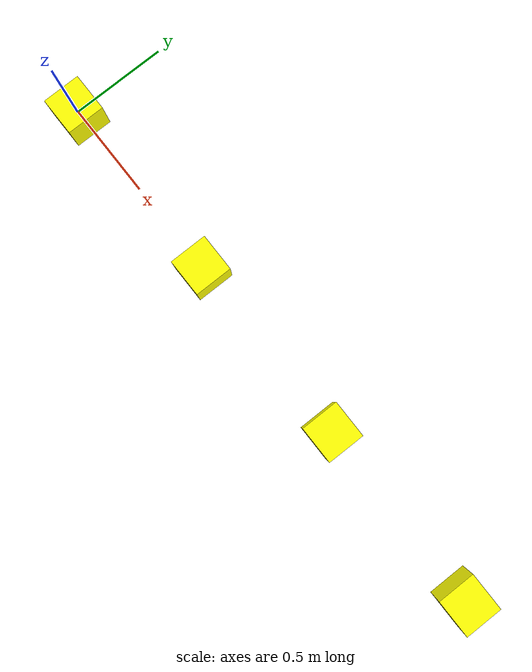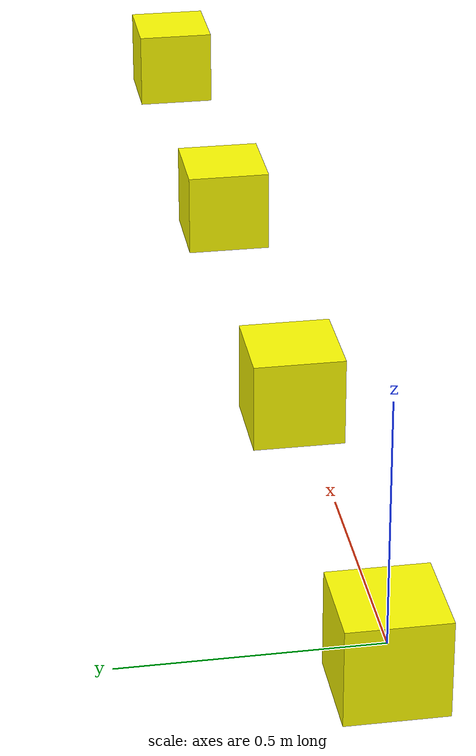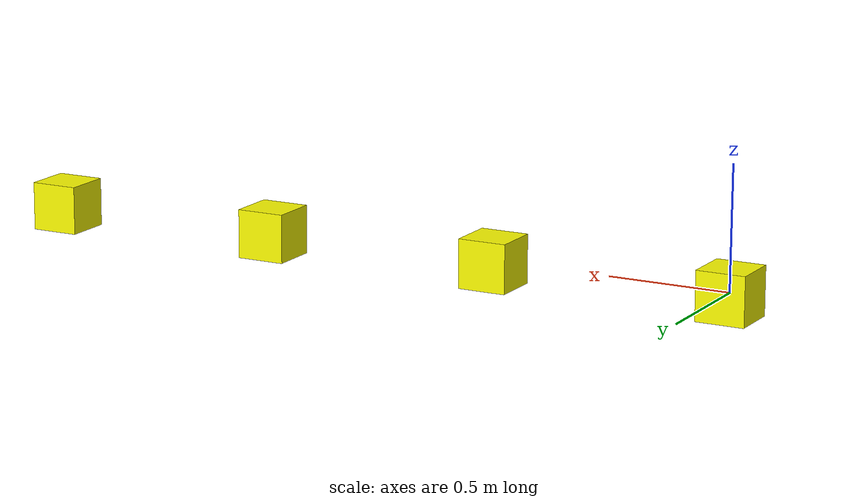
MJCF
<mujoco model="2D_UpperLimb">

  <compiler inertiafromgeom = "auto"
            angle 					= "radian" />

						<option  timestep  = '0.0001'
										iterations = '50'
										    solver = 'PGS'
										integrator = 'Euler'
										   gravity = "0 0 0"
									   collision = 'predefined' > <!-- Turn off collision -->

							<flag energy = 'enable'/>

						</option>

  <asset>
    <!-- Texture of the surrounding sky box
         setting everything as white-ish color for better visualization -->
     <texture type 		= "skybox"
              builtin = "flat"
              rgb1 		= "1 1 1"
              rgb2		= "1 1 1"
              width 	= "100"
              height 	= "100"/>

     <!-- Joint and Limb Color -->
     <material name = "JointColor" rgba = "1.0 1.0 0.0 1" />
     <material name = "LimbColor"  rgba = "0.7 0.7 0.7 1" />
  </asset>

  <worldbody>

        <body name='cameramover' mocap='true' pos='0 0 0'>
						<camera name='mycamera' pos='0.0 2.0 2.0' euler='1.5707 0 0'/>
      	</body>

    <!-- ===============  MODEL STARTS  =============== -->

    <!-- ============ UPPER ARM START =============== -->
		<body name='root' pos='0 0 0' euler='0 0 0'>
			<joint name='impedanceController' ref='0' type='slide' stiffness='0' pos='0 0 0' axis='1 0 0' />
			<inertial pos='0 0 0'  mass='1' diaginertia='1 1 1' />
			<geom name='manipulatorMassGEOM1' type='box' pos='0 0 0' material='JointColor' size='0.1 0.1 0.1' mass='0'/>

			<body name='manipulatedMass1' pos='0 0 0' euler='0 0 0'>
				<joint name='spring1' ref='0' type='slide' stiffness='1' pos='0 0 0' axis='1 0 0' />
				<inertial pos='1.0 0 0' mass='1' diaginertia='1 1 1' />
				<geom name='manipulatedMassGEOM2' type='box' pos='1.0 0 0' material='JointColor' size='0.1 0.1 0.1' mass='0'/>

				<body name='manipulatedMass2' pos='1 0 0' euler='0 0 0'>
					<joint name='spring2' ref='0' type='slide' stiffness='1' pos='0 0 0' axis='1 0 0' />
					<inertial pos='1.0 0 0' mass='1' diaginertia='1 1 1' />
					<geom name='manipulatedMassGEOM3' type='box' pos='1.0 0 0' material='JointColor' size='0.1 0.1 0.1' mass='0'/>

					<body name='manipulatedMass3' pos='1 0 0' euler='0 0 0'>
						<joint name='spring3' ref='0' type='slide' stiffness='1' pos='0 0 0' axis='1 0 0' />
						<inertial pos='1.0 0 0' mass='1' diaginertia='1 1 1' />
						<geom name='manipulatedMassGEOM4' type='box' pos='1.0 0 0' material='JointColor' size='0.1 0.1 0.1' mass='0'/>

					</body>
				</body>
			</body>

		</body>

  </worldbody>

	<!-- This xml model file don't use the actuator, since it simply runs to the exact joint position -->
	<actuator>

		<motor joint = 'impedanceController' name = 'impedanceControllerAct'  forcelimited = 'false'/>

  </actuator>

</mujoco>
